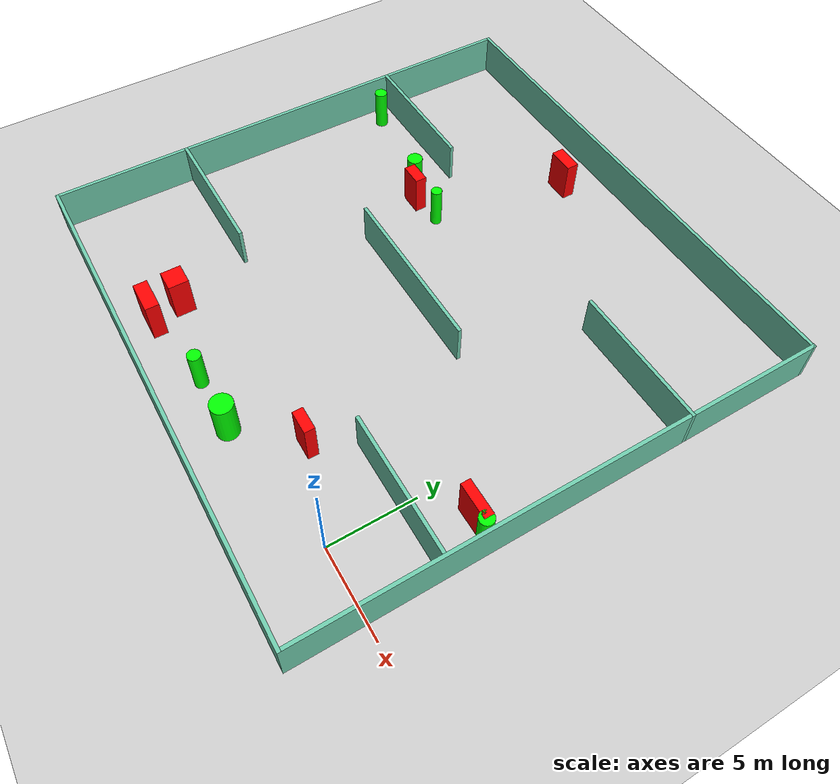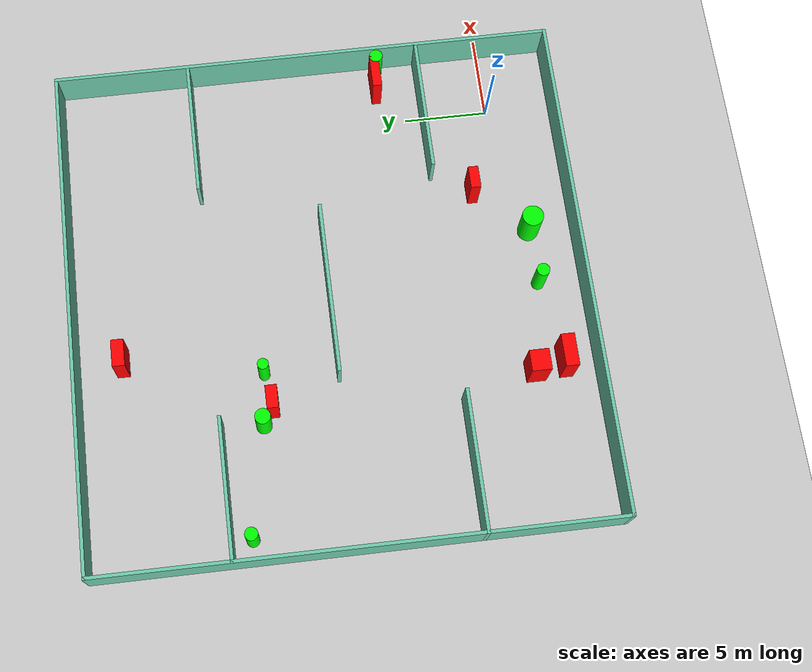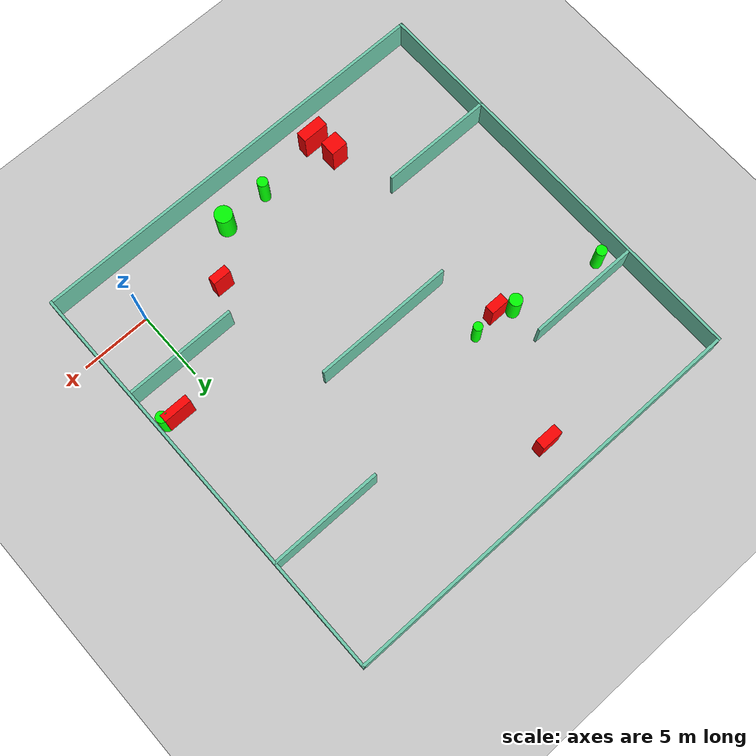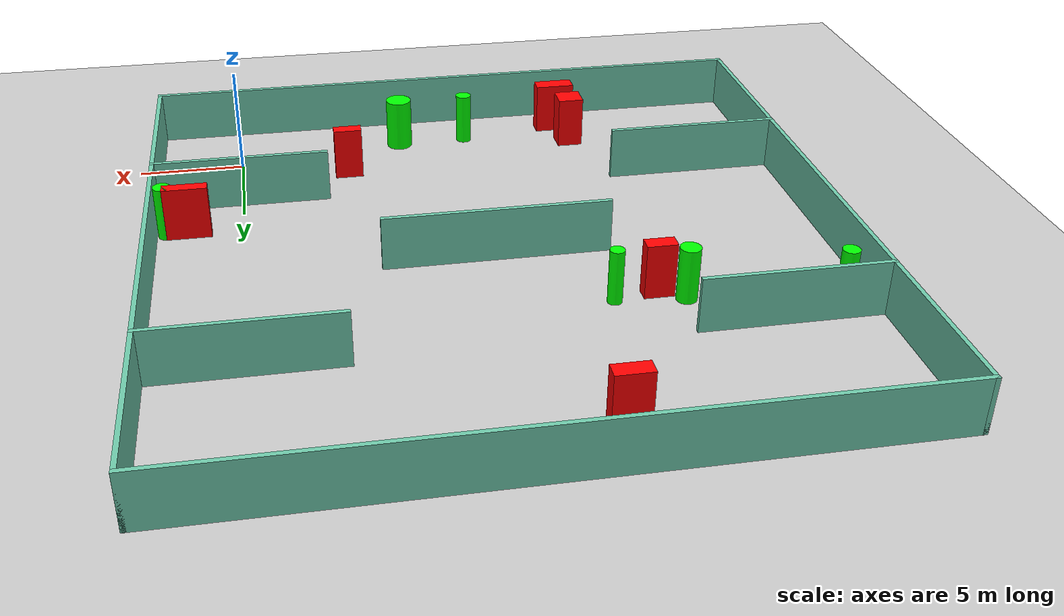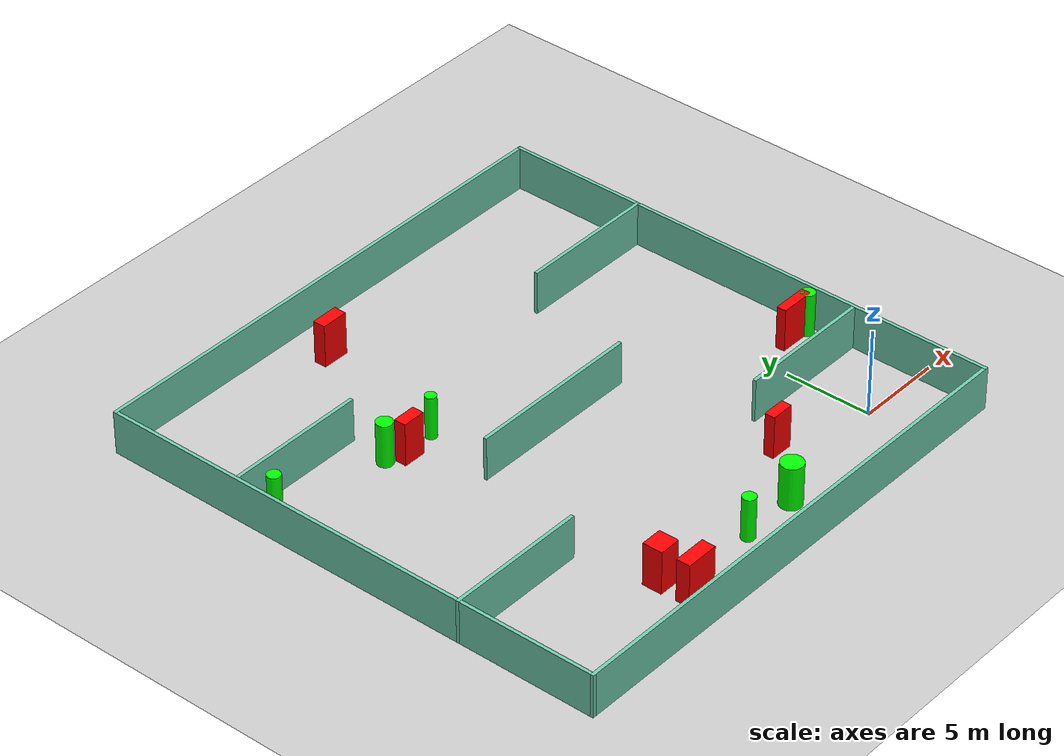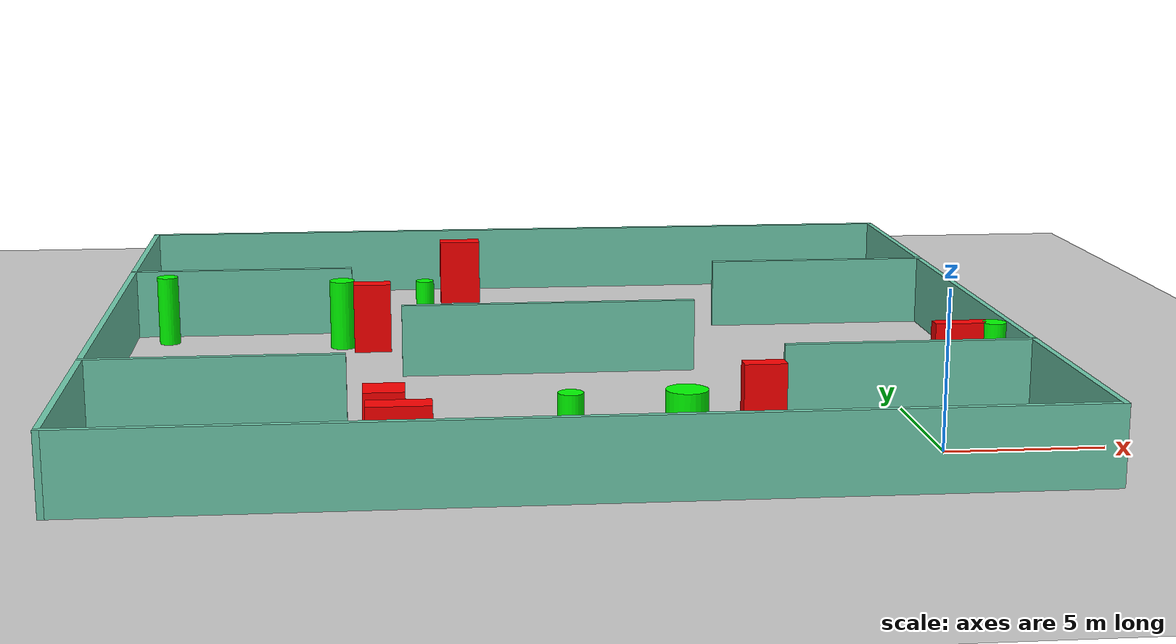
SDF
<sdf version="1.7">
 <world name="default">
  <light name="sun" type="directional">
   <pose>0 0 10 0 -0 0</pose>
   <diffuse>0.8 0.8 0.8 1</diffuse>
   <specular>0.2 0.2 0.2 1</specular>
   <attenuation>
    <range>1000</range>
    <constant>0.9</constant>
    <linear>0.01</linear>
    <quadratic>0.001</quadratic>
   </attenuation>
   <direction>-0.5 0.1 -0.9</direction>
   <spot><inner_angle>0</inner_angle><outer_angle>0</outer_angle><falloff>0</falloff></spot>
  </light>
  <model name="ground_plane">
   <static>1</static>
   <link name="link">
    <collision name="collision">
     <geometry><plane><normal>0 0 1</normal><size>100 100</size></plane></geometry>
     <surface>
      <contact><collide_bitmask>65535</collide_bitmask></contact>
      <friction><ode><mu>100</mu><mu2>50</mu2></ode></friction>
     </surface>
    </collision>
    <visual name="visual">
     <cast_shadows>0</cast_shadows>
     <geometry><plane><normal>0 0 1</normal><size>100 100</size></plane></geometry>
     <material>
      <script><uri>file://media/materials/scripts/gazebo.material</uri><name>Gazebo/Grey</name></script>
     </material>
    </visual>
   </link>
  </model>
  <gravity>0 0 -9.8</gravity>
  <magnetic_field>6e-06 2.3e-05 -4.2e-05</magnetic_field>
  <atmosphere type="adiabatic"/>
  <physics type="ode">
   <max_step_size>0.001</max_step_size>
   <real_time_factor>1</real_time_factor>
   <real_time_update_rate>1000</real_time_update_rate>
  </physics>
  <scene><ambient>0.4 0.4 0.4 1</ambient><background>0.7 0.7 0.7 1</background><shadows>1</shadows></scene>
  <spherical_coordinates>
   <surface_model>EARTH_WGS84</surface_model>
   <latitude_deg>0</latitude_deg>
   <longitude_deg>0</longitude_deg>
   <elevation>0</elevation>
   <heading_deg>0</heading_deg>
  </spherical_coordinates>
  <model name="my_base_walls">
   <link name="Wall_10">
    <collision name="Wall_10_Collision">
     <geometry><box><size>8.2 0.2 2.5</size></box></geometry>
     <pose>0 0 1.25 0 -0 0</pose>
    </collision>
    <visual name="Wall_10_Visual">
     <pose>0 0 1.25 0 -0 0</pose>
     <geometry><box><size>8.2 0.2 2.5</size></box></geometry>
     <material>
      <script><uri>file://media/materials/scripts/gazebo.material</uri><name>Gazebo/Grey</name></script>
      <ambient>0.435294 0.796078 0.67451 1</ambient>
     </material>
     <meta><layer>0</layer></meta>
    </visual>
    <pose>-11 -7 0 0 -0 0</pose>
   </link>
   <link name="Wall_12">
    <collision name="Wall_12_Collision">
     <geometry><box><size>8.2 0.2 2.5</size></box></geometry>
     <pose>0 0 1.25 0 -0 0</pose>
    </collision>
    <visual name="Wall_12_Visual">
     <pose>0 0 1.25 0 -0 0</pose>
     <geometry><box><size>8.2 0.2 2.5</size></box></geometry>
     <material>
      <script><uri>file://media/materials/scripts/gazebo.material</uri><name>Gazebo/Grey</name></script>
      <ambient>0.435294 0.796078 0.67451 1</ambient>
     </material>
     <meta><layer>0</layer></meta>
    </visual>
    <pose>-11 7 0 0 -0 0</pose>
   </link>
   <link name="Wall_14">
    <collision name="Wall_14_Collision">
     <geometry><box><size>8.2 0.2 2.5</size></box></geometry>
     <pose>0 0 1.25 0 -0 0</pose>
    </collision>
    <visual name="Wall_14_Visual">
     <pose>0 0 1.25 0 -0 0</pose>
     <geometry><box><size>8.2 0.2 2.5</size></box></geometry>
     <material>
      <script><uri>file://media/materials/scripts/gazebo.material</uri><name>Gazebo/Grey</name></script>
      <ambient>0.435294 0.796078 0.67451 1</ambient>
     </material>
     <meta><layer>0</layer></meta>
    </visual>
    <pose>11 7 0 0 -0 3.14159</pose>
   </link>
   <link name="Wall_16">
    <collision name="Wall_16_Collision">
     <geometry><box><size>10.2 0.2 2.5</size></box></geometry>
     <pose>0 0 1.25 0 -0 0</pose>
    </collision>
    <visual name="Wall_16_Visual">
     <pose>0 0 1.25 0 -0 0</pose>
     <geometry><box><size>10.2 0.2 2.5</size></box></geometry>
     <material>
      <script><uri>file://media/materials/scripts/gazebo.material</uri><name>Gazebo/Grey</name></script>
      <ambient>0.435294 0.796078 0.67451 1</ambient>
     </material>
     <meta><layer>0</layer></meta>
    </visual>
    <pose>0 0 0 0 -0 3.14159</pose>
   </link>
   <link name="Wall_2">
    <collision name="Wall_2_Collision">
     <geometry><box><size>30.2 0.2 2.5</size></box></geometry>
     <pose>0 0 1.25 0 -0 0</pose>
    </collision>
    <visual name="Wall_2_Visual">
     <pose>0 0 1.25 0 -0 0</pose>
     <geometry><box><size>30.2 0.2 2.5</size></box></geometry>
     <material>
      <script><uri>file://media/materials/scripts/gazebo.material</uri><name>Gazebo/Grey</name></script>
      <ambient>0.435294 0.796078 0.67451 1</ambient>
     </material>
     <meta><layer>0</layer></meta>
    </visual>
    <pose>0 -15 0 0 -0 3.14159</pose>
   </link>
   <link name="Wall_3">
    <collision name="Wall_3_Collision">
     <geometry><box><size>30.2 0.2 2.5</size></box></geometry>
     <pose>0 0 1.25 0 -0 0</pose>
    </collision>
    <visual name="Wall_3_Visual">
     <pose>0 0 1.25 0 -0 0</pose>
     <geometry><box><size>30.2 0.2 2.5</size></box></geometry>
     <material>
      <script><uri>file://media/materials/scripts/gazebo.material</uri><name>Gazebo/Grey</name></script>
      <ambient>0.435294 0.796078 0.67451 1</ambient>
     </material>
     <meta><layer>0</layer></meta>
    </visual>
    <pose>-15 0 0 0 -0 1.5708</pose>
   </link>
   <link name="Wall_4">
    <collision name="Wall_4_Collision">
     <geometry><box><size>30.2 0.2 2.5</size></box></geometry>
     <pose>0 0 1.25 0 -0 0</pose>
    </collision>
    <visual name="Wall_4_Visual">
     <pose>0 0 1.25 0 -0 0</pose>
     <geometry><box><size>30.2 0.2 2.5</size></box></geometry>
     <material>
      <script><uri>file://media/materials/scripts/gazebo.material</uri><name>Gazebo/Grey</name></script>
      <ambient>0.435294 0.796078 0.67451 1</ambient>
     </material>
     <meta><layer>0</layer></meta>
    </visual>
    <pose>0 15 0 0 -0 0</pose>
   </link>
   <link name="Wall_6">
    <collision name="Wall_6_Collision">
     <geometry><box><size>30.2 0.2 2.5</size></box></geometry>
     <pose>0 0 1.25 0 -0 0</pose>
    </collision>
    <visual name="Wall_6_Visual">
     <pose>0 0 1.25 0 -0 0</pose>
     <geometry><box><size>30.2 0.2 2.5</size></box></geometry>
     <material>
      <script><uri>file://media/materials/scripts/gazebo.material</uri><name>Gazebo/Grey</name></script>
      <ambient>0.435294 0.796078 0.67451 1</ambient>
     </material>
     <meta><layer>0</layer></meta>
    </visual>
    <pose>15 0 0 0 -0 1.5708</pose>
   </link>
   <link name="Wall_8">
    <collision name="Wall_8_Collision">
     <geometry><box><size>8.2 0.2 2.5</size></box></geometry>
     <pose>0 0 1.25 0 -0 0</pose>
    </collision>
    <visual name="Wall_8_Visual">
     <pose>0 0 1.25 0 -0 0</pose>
     <geometry><box><size>8.2 0.2 2.5</size></box></geometry>
     <material>
      <script><uri>file://media/materials/scripts/gazebo.material</uri><name>Gazebo/Grey</name></script>
      <ambient>0.435294 0.796078 0.67451 1</ambient>
     </material>
     <meta><layer>0</layer></meta>
    </visual>
    <pose>11 -7 0 0 -0 3.14159</pose>
   </link>
   <static>1</static>
   <pose>-11 11 0 0 -0 0</pose>
  </model>
  <model name="cylinder1">
   <static>1</static>
   <link name="link">
    <inertial>
     <mass>1</mass>
     <inertia><ixx>0.5</ixx><ixy>0</ixy><ixz>0</ixz><iyy>0.5</iyy><iyz>0</iyz><izz>1</izz></inertia>
    </inertial>
    <collision name="collision">
     <geometry><cylinder><radius>0.401067126861566</radius><length>2.5</length></cylinder></geometry>
    </collision>
    <visual name="visual">
     <geometry><cylinder><radius>0.401067126861566</radius><length>2.5</length></cylinder></geometry>
     <material>
      <ambient>0 1 0 1</ambient>
      <diffuse>0 1 0 1</diffuse>
      <specular>0.1 0.1 0.1 1</specular>
      <emissive>0 0 0 0</emissive>
     </material>
    </visual>
   </link>
   <pose>3.451514459732305 6.492114896016819 1.25 0 0 0</pose>
  </model>
  <model name="cylinder2">
   <static>1</static>
   <link name="link">
    <inertial>
     <mass>1</mass>
     <inertia><ixx>0.5</ixx><ixy>0</ixy><ixz>0</ixz><iyy>0.5</iyy><iyz>0</iyz><izz>1</izz></inertia>
    </inertial>
    <collision name="collision">
     <geometry><cylinder><radius>0.37909615419357134</radius><length>2.5</length></cylinder></geometry>
    </collision>
    <visual name="visual">
     <geometry><cylinder><radius>0.37909615419357134</radius><length>2.5</length></cylinder></geometry>
     <material>
      <ambient>0 1 0 1</ambient>
      <diffuse>0 1 0 1</diffuse>
      <specular>0.1 0.1 0.1 1</specular>
      <emissive>0 0 0 0</emissive>
     </material>
    </visual>
   </link>
   <pose>-24.648919634142867 16.829211396832882 1.25 0 0 0</pose>
  </model>
  <model name="cylinder3">
   <static>1</static>
   <link name="link">
    <inertial>
     <mass>1</mass>
     <inertia><ixx>0.5</ixx><ixy>0</ixy><ixz>0</ixz><iyy>0.5</iyy><iyz>0</iyz><izz>1</izz></inertia>
    </inertial>
    <collision name="collision">
     <geometry><cylinder><radius>0.4564666127607146</radius><length>2.5</length></cylinder></geometry>
    </collision>
    <visual name="visual">
     <geometry><cylinder><radius>0.4564666127607146</radius><length>2.5</length></cylinder></geometry>
     <material>
      <ambient>0 1 0 1</ambient>
      <diffuse>0 1 0 1</diffuse>
      <specular>0.1 0.1 0.1 1</specular>
      <emissive>0 0 0 0</emissive>
     </material>
    </visual>
   </link>
   <pose>-18.217695603030034 15.579889322232127 1.25 0 0 0</pose>
  </model>
  <model name="cylinder4">
   <static>1</static>
   <link name="link">
    <inertial>
     <mass>1</mass>
     <inertia><ixx>0.5</ixx><ixy>0</ixy><ixz>0</ixz><iyy>0.5</iyy><iyz>0</iyz><izz>1</izz></inertia>
    </inertial>
    <collision name="collision">
     <geometry><cylinder><radius>0.32316729503875147</radius><length>2.5</length></cylinder></geometry>
    </collision>
    <visual name="visual">
     <geometry><cylinder><radius>0.32316729503875147</radius><length>2.5</length></cylinder></geometry>
     <material>
      <ambient>0 1 0 1</ambient>
      <diffuse>0 1 0 1</diffuse>
      <specular>0.1 0.1 0.1 1</specular>
      <emissive>0 0 0 0</emissive>
     </material>
    </visual>
   </link>
   <pose>-15.199512270389809 15.269755140985673 1.25 0 0 0</pose>
  </model>
  <model name="cylinder5">
   <static>1</static>
   <link name="link">
    <inertial>
     <mass>1</mass>
     <inertia><ixx>0.5</ixx><ixy>0</ixy><ixz>0</ixz><iyy>0.5</iyy><iyz>0</iyz><izz>1</izz></inertia>
    </inertial>
    <collision name="collision">
     <geometry><cylinder><radius>0.6285782227439412</radius><length>2.5</length></cylinder></geometry>
    </collision>
    <visual name="visual">
     <geometry><cylinder><radius>0.6285782227439412</radius><length>2.5</length></cylinder></geometry>
     <material>
      <ambient>0 1 0 1</ambient>
      <diffuse>0 1 0 1</diffuse>
      <specular>0.1 0.1 0.1 1</specular>
      <emissive>0 0 0 0</emissive>
     </material>
    </visual>
   </link>
   <pose>-8.040481242534387 -1.3647875474115958 1.25 0 0 0</pose>
  </model>
  <model name="cylinder6">
   <static>1</static>
   <link name="link">
    <inertial>
     <mass>1</mass>
     <inertia><ixx>0.5</ixx><ixy>0</ixy><ixz>0</ixz><iyy>0.5</iyy><iyz>0</iyz><izz>1</izz></inertia>
    </inertial>
    <collision name="collision">
     <geometry><cylinder><radius>0.379276705989279</radius><length>2.5</length></cylinder></geometry>
    </collision>
    <visual name="visual">
     <geometry><cylinder><radius>0.379276705989279</radius><length>2.5</length></cylinder></geometry>
     <material>
      <ambient>0 1 0 1</ambient>
      <diffuse>0 1 0 1</diffuse>
      <specular>0.1 0.1 0.1 1</specular>
      <emissive>0 0 0 0</emissive>
     </material>
    </visual>
   </link>
   <pose>-11.413810583537547 -1.421690304379172 1.25 0 0 0</pose>
  </model>
  <model name="box1">
   <static>1</static>
   <link name="link">
    <inertial>
     <mass>1</mass>
     <inertia><ixx>0.083</ixx><ixy>0</ixy><ixz>0</ixz><iyy>0.083</iyy><iyz>0</iyz><izz>0.083</izz></inertia>
    </inertial>
    <collision name="collision">
     <geometry><box><size>1.903028952732803 0.7890854576215667 2.5</size></box></geometry>
    </collision>
    <visual name="visual">
     <geometry><box><size>1.903028952732803 0.7890854576215667 2.5</size></box></geometry>
     <material>
      <ambient>1 0 0 1</ambient>
      <diffuse>1 0 0 1</diffuse>
      <specular>0.1 0.1 0.1 1</specular>
      <emissive>0 0 0 0</emissive>
     </material>
    </visual>
    <sensor name="my_contact" type="contact">
     <contact><collision>box_collision</collision><topic>__default_topic__</topic></contact>
    </sensor>
   </link>
   <pose>-16.335673064544654 -2.147109072673681 1.25 0 0 0</pose>
  </model>
  <model name="box2">
   <static>1</static>
   <link name="link">
    <inertial>
     <mass>1</mass>
     <inertia><ixx>0.083</ixx><ixy>0</ixy><ixz>0</ixz><iyy>0.083</iyy><iyz>0</iyz><izz>0.083</izz></inertia>
    </inertial>
    <collision name="collision">
     <geometry><box><size>2.017239633836554 0.5487406534350773 2.5</size></box></geometry>
    </collision>
    <visual name="visual">
     <geometry><box><size>2.017239633836554 0.5487406534350773 2.5</size></box></geometry>
     <material>
      <ambient>1 0 0 1</ambient>
      <diffuse>1 0 0 1</diffuse>
      <specular>0.1 0.1 0.1 1</specular>
      <emissive>0 0 0 0</emissive>
     </material>
    </visual>
    <sensor name="my_contact" type="contact">
     <contact><collision>box_collision</collision><topic>__default_topic__</topic></contact>
    </sensor>
   </link>
   <pose>2.4538026965448587 6.635591213955145 1.25 0 0 0</pose>
  </model>
  <model name="box3">
   <static>1</static>
   <link name="link">
    <inertial>
     <mass>1</mass>
     <inertia><ixx>0.083</ixx><ixy>0</ixy><ixz>0</ixz><iyy>0.083</iyy><iyz>0</iyz><izz>0.083</izz></inertia>
    </inertial>
    <collision name="collision">
     <geometry><box><size>1.2355685338714792 1.1496863776642925 2.5</size></box></geometry>
    </collision>
    <visual name="visual">
     <geometry><box><size>1.2355685338714792 1.1496863776642925 2.5</size></box></geometry>
     <material>
      <ambient>1 0 0 1</ambient>
      <diffuse>1 0 0 1</diffuse>
      <specular>0.1 0.1 0.1 1</specular>
      <emissive>0 0 0 0</emissive>
     </material>
    </visual>
    <sensor name="my_contact" type="contact">
     <contact><collision>box_collision</collision><topic>__default_topic__</topic></contact>
    </sensor>
   </link>
   <pose>-16.74633233500243 -0.37970113586874765 1.25 0 0 0</pose>
  </model>
  <model name="box4">
   <static>1</static>
   <link name="link">
    <inertial>
     <mass>1</mass>
     <inertia><ixx>0.083</ixx><ixy>0</ixy><ixz>0</ixz><iyy>0.083</iyy><iyz>0</iyz><izz>0.083</izz></inertia>
    </inertial>
    <collision name="collision">
     <geometry><box><size>1.3337903642252802 0.5966580275269421 2.5</size></box></geometry>
    </collision>
    <visual name="visual">
     <geometry><box><size>1.3337903642252802 0.5966580275269421 2.5</size></box></geometry>
     <material>
      <ambient>1 0 0 1</ambient>
      <diffuse>1 0 0 1</diffuse>
      <specular>0.1 0.1 0.1 1</specular>
      <emissive>0 0 0 0</emissive>
     </material>
    </visual>
    <sensor name="my_contact" type="contact">
     <contact><collision>box_collision</collision><topic>__default_topic__</topic></contact>
    </sensor>
   </link>
   <pose>-5.192553940055049 1.679027519535838 1.25 0 0 0</pose>
  </model>
  <model name="box5">
   <static>1</static>
   <link name="link">
    <inertial>
     <mass>1</mass>
     <inertia><ixx>0.083</ixx><ixy>0</ixy><ixz>0</ixz><iyy>0.083</iyy><iyz>0</iyz><izz>0.083</izz></inertia>
    </inertial>
    <collision name="collision">
     <geometry><box><size>1.3329174462084716 0.6778314094050897 2.5</size></box></geometry>
    </collision>
    <visual name="visual">
     <geometry><box><size>1.3329174462084716 0.6778314094050897 2.5</size></box></geometry>
     <material>
      <ambient>1 0 0 1</ambient>
      <diffuse>1 0 0 1</diffuse>
      <specular>0.1 0.1 0.1 1</specular>
      <emissive>0 0 0 0</emissive>
     </material>
    </visual>
    <sensor name="my_contact" type="contact">
     <contact><collision>box_collision</collision><topic>__default_topic__</topic></contact>
    </sensor>
   </link>
   <pose>-17.129671853092024 14.960743427745559 1.25 0 0 0</pose>
  </model>
  <model name="box6">
   <static>1</static>
   <link name="link">
    <inertial>
     <mass>1</mass>
     <inertia><ixx>0.083</ixx><ixy>0</ixy><ixz>0</ixz><iyy>0.083</iyy><iyz>0</iyz><izz>0.083</izz></inertia>
    </inertial>
    <collision name="collision">
     <geometry><box><size>1.570882284923221 0.7256449269825498 2.5</size></box></geometry>
    </collision>
    <visual name="visual">
     <geometry><box><size>1.570882284923221 0.7256449269825498 2.5</size></box></geometry>
     <material>
      <ambient>1 0 0 1</ambient>
      <diffuse>1 0 0 1</diffuse>
      <specular>0.1 0.1 0.1 1</specular>
      <emissive>0 0 0 0</emissive>
     </material>
    </visual>
    <sensor name="my_contact" type="contact">
     <contact><collision>box_collision</collision><topic>__default_topic__</topic></contact>
    </sensor>
   </link>
   <pose>-13.614514218931053 23.38885468927649 1.25 0 0 0</pose>
  </model>
 </world>
</sdf>
